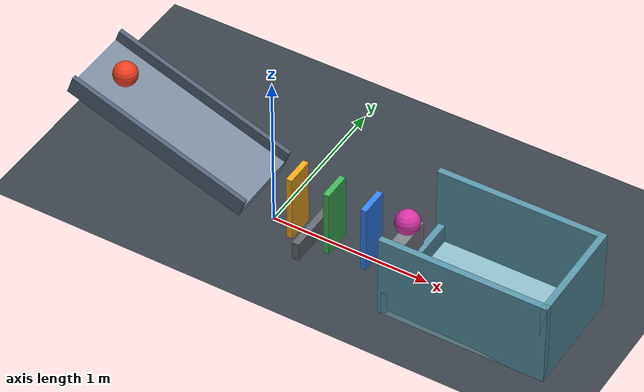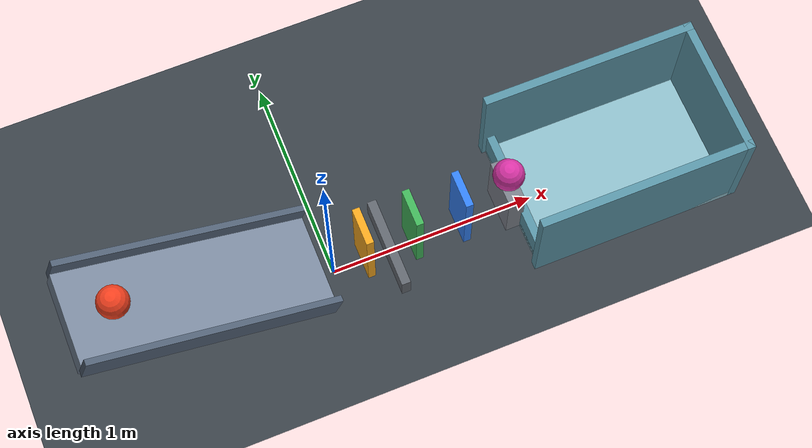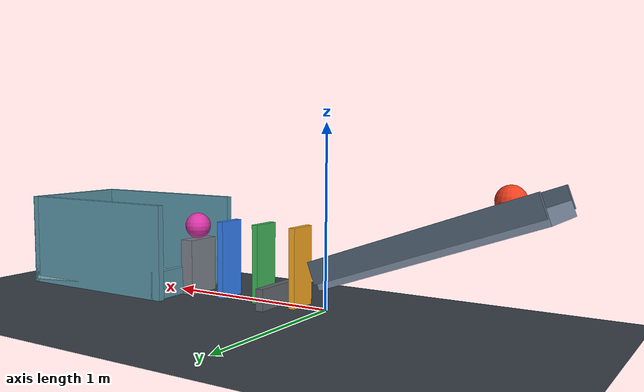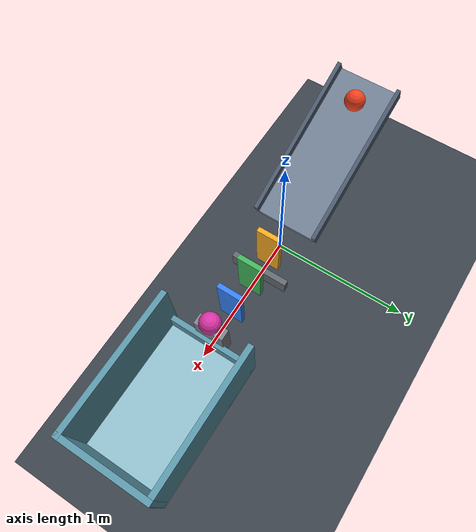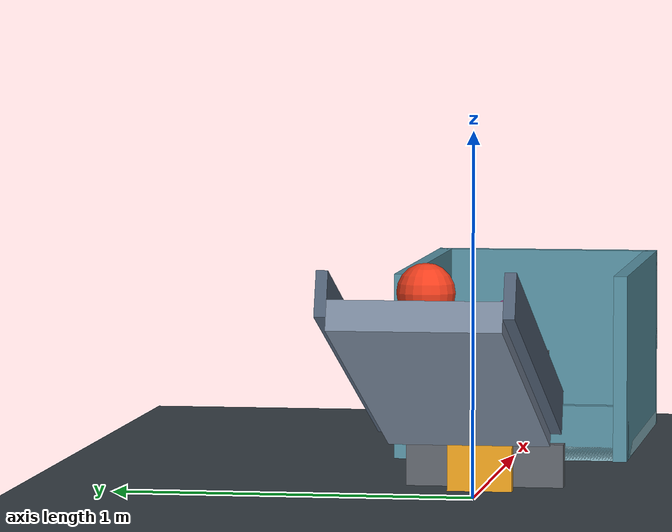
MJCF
<mujoco model="ramp_domino_cup">
  <compiler angle="radian" inertiafromgeom="true"/>
  <option timestep="0.002" gravity="0 0 -9.81" integrator="implicitfast" solver="Newton" iterations="100" tolerance="1e-10"/>
  <size njmax="1000" nconmax="300"/>

  <visual>
    <headlight ambient="0.35 0.35 0.35" diffuse="0.65 0.65 0.65" specular="0.15 0.15 0.15"/>
  </visual>

  <worldbody>
    <light name="main_light" pos="0.3 -2 4" dir="0 0 -1"/>
    <camera name="overview" pos="2.6 -4.4 2.6" xyaxes="0.86 0.51 0 -0.23 0.39 0.89"/>

    <geom name="floor" type="plane" size="4 3 0.1" rgba="0.22 0.25 0.28 1" friction="0.9 0.005 0.0002" condim="3" solref="0.008 1" solimp="0.95 0.99 0.001"/>

    <!-- The ramp descends toward +x at 20 degrees. -->
    <body name="ramp" pos="0 0 0">
      <geom name="ramp_deck" type="box" pos="-0.637496 0 0.397624" quat="0.984807753 0 0.173648178 0" size="0.6 0.22 0.04" rgba="0.48 0.54 0.62 1" friction="0.7 0.003 0.0002" condim="6" solref="0.008 1" solimp="0.95 0.99 0.001"/>
      <geom name="ramp_left_rail" type="box" pos="-0.618685 0.235 0.449307" quat="0.984807753 0 0.173648178 0" size="0.6 0.015 0.06" rgba="0.32 0.38 0.46 1" friction="0.7 0.003 0.0002" condim="6" solref="0.008 1" solimp="0.95 0.99 0.001"/>
      <geom name="ramp_right_rail" type="box" pos="-0.618685 -0.235 0.449307" quat="0.984807753 0 0.173648178 0" size="0.6 0.015 0.06" rgba="0.32 0.38 0.46 1" friction="0.7 0.003 0.0002" condim="6" solref="0.008 1" solimp="0.95 0.99 0.001"/>
    </body>

    <!-- Its initial contact point is one metre along the ramp from its lower edge. -->
    <body name="ball1" pos="-0.973972 0 0.642685">
      <freejoint/>
      <geom name="ball1_sphere" type="sphere" size="0.075" mass="0.4" rgba="0.95 0.25 0.12 1" friction="0.7 0.003 0.0002" condim="6" priority="1" solref="0.008 1" solimp="0.95 0.99 0.001"/>
    </body>

    <body name="d1" pos="0.16 0 0.2205">
      <freejoint/>
      <geom name="d1_block" type="box" size="0.018 0.09 0.22" mass="0.25" rgba="0.95 0.65 0.12 1" friction="1.0 0.005 0.0002" condim="3" solref="0.008 1" solimp="0.95 0.99 0.001"/>
    </body>

    <body name="d2" pos="0.40 0 0.2205">
      <freejoint/>
      <geom name="d2_block" type="box" size="0.018 0.09 0.22" mass="0.25" rgba="0.25 0.70 0.35 1" friction="1.0 0.005 0.0002" condim="3" solref="0.008 1" solimp="0.95 0.99 0.001"/>
    </body>

    <body name="d3" pos="0.64 0 0.2205">
      <freejoint/>
      <geom name="d3_block" type="box" size="0.018 0.09 0.22" mass="0.25" rgba="0.20 0.50 0.95 1" friction="1.0 0.005 0.0002" condim="3" solref="0.008 1" solimp="0.95 0.99 0.001"/>
    </body>

    <!-- This low stop catches ball1 without interrupting the upper domino contacts. -->
    <body name="ball1_stop" pos="0.28 0 0.06">
      <geom name="ball1_stop_block" type="box" size="0.022 0.22 0.06" rgba="0.38 0.40 0.43 1" friction="0.9 0.005 0.0002" condim="3" solref="0.008 1" solimp="0.95 0.99 0.001"/>
    </body>

    <!-- Ball2 waits on a narrow elevated perch beside the cup's low receiving rim. -->
    <body name="ball2_perch" pos="0.87 0 0.16">
      <geom name="ball2_perch_block" type="box" size="0.04 0.11 0.16" rgba="0.48 0.50 0.54 1" friction="0.7 0.005 0.0002" condim="3" solref="0.008 1" solimp="0.95 0.99 0.001"/>
    </body>

    <body name="ball2" pos="0.87 0 0.3955">
      <freejoint/>
      <geom name="ball2_sphere" type="sphere" size="0.075" mass="0.08" rgba="0.85 0.20 0.65 1" friction="0.7 0.015 0.02" condim="6" priority="2" solref="0.012 1" solimp="0.95 0.99 0.001"/>
    </body>

    <!-- A rectangular catching cup with a low rear rim and high containment walls. -->
    <body name="cup" pos="0 0 0">
      <geom name="cup_bottom" type="box" pos="1.40 0 0.02" size="0.50 0.34 0.02" rgba="0.55 0.73 0.78 1" friction="0.8 0.015 0.02" condim="6" solref="0.012 1" solimp="0.95 0.99 0.001"/>
      <geom name="cup_rear_wall" type="box" pos="0.92 0 0.08" size="0.02 0.34 0.08" rgba="0.35 0.58 0.65 1" friction="0.8 0.015 0.02" condim="6" solref="0.012 1" solimp="0.95 0.99 0.001"/>
      <geom name="cup_front_wall" type="box" pos="1.90 0 0.27" size="0.02 0.34 0.27" rgba="0.35 0.58 0.65 1" friction="0.8 0.015 0.02" condim="6" solref="0.012 1" solimp="0.95 0.99 0.001"/>
      <geom name="cup_left_wall" type="box" pos="1.40 0.32 0.27" size="0.52 0.02 0.27" rgba="0.35 0.58 0.65 1" friction="0.8 0.015 0.02" condim="6" solref="0.012 1" solimp="0.95 0.99 0.001"/>
      <geom name="cup_right_wall" type="box" pos="1.40 -0.32 0.27" size="0.52 0.02 0.27" rgba="0.35 0.58 0.65 1" friction="0.8 0.015 0.02" condim="6" solref="0.012 1" solimp="0.95 0.99 0.001"/>
    </body>
  </worldbody>

  <keyframe>
    <key name="start"/>
  </keyframe>
</mujoco>
